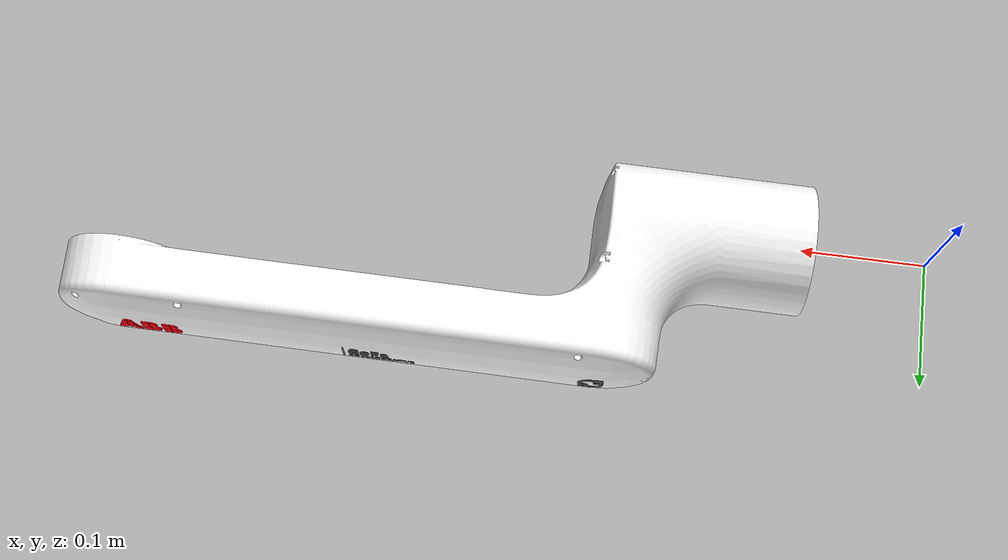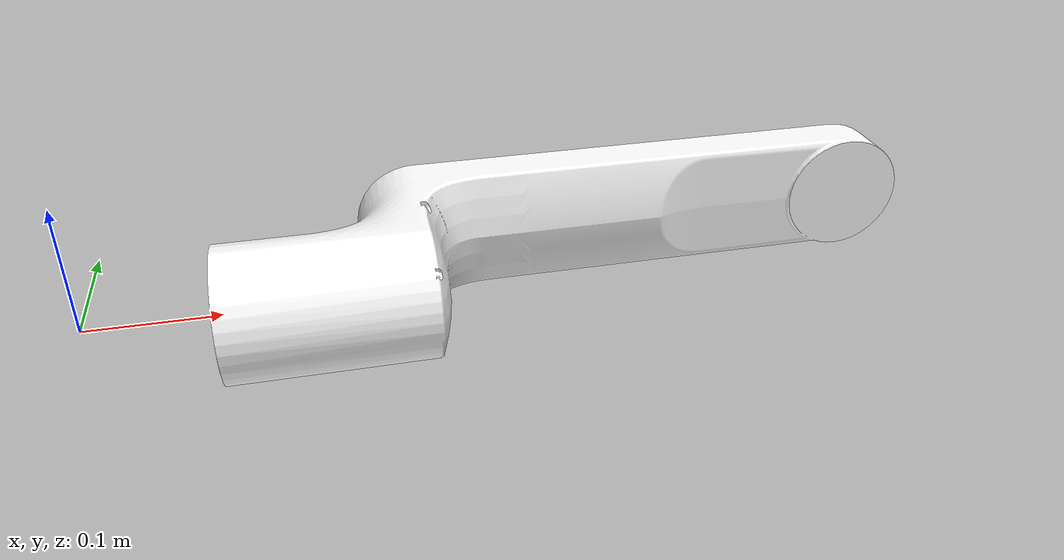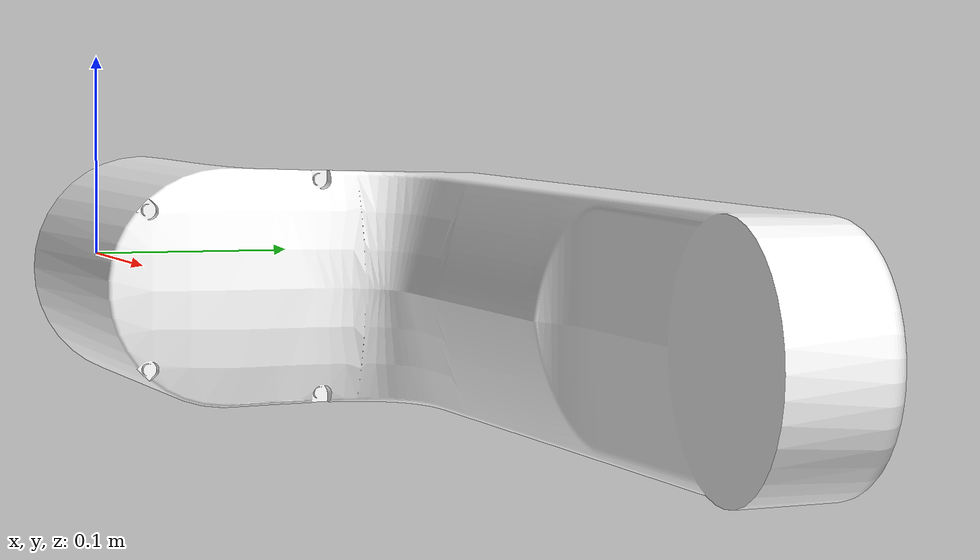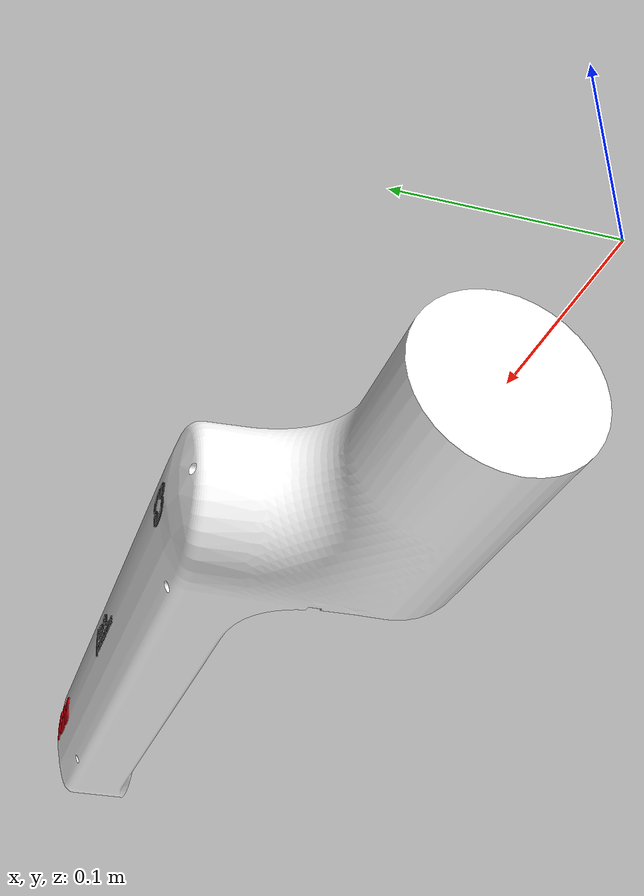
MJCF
<mujoco model="link_4">
  <default>
    <default class="visual">
      <geom group="2" type="mesh" contype="0" conaffinity="0"/>
    </default>
    <default class="collision">
      <geom group="3" type="mesh"/>
    </default>
  </default>
  <asset>
    <material name="material_link_4_0" specular="0.20000000000000004" shininess="1.0" rgba="0.09803922 0.09803922 0.09803922 1.0"/>
    <material name="material_link_4_1" specular="0.20000000000000004" shininess="1.0" rgba="1.00000000 0.00000000 0.05490196 1.0"/>
    <material name="material_link_4_2" specular="0.20000000000000004" shininess="1.0" rgba="1.00000000 1.00000000 1.00000000 1.0"/>
    <mesh file="link_4_0.obj"/>
    <mesh file="link_4_1.obj"/>
    <mesh file="link_4_2.obj"/>
  </asset>
  <worldbody>
    <body name="link_4">
      <geom mesh="link_4_0" material="material_link_4_2" class="visual"/>
      <geom mesh="link_4_1" material="material_link_4_1" class="visual"/>
      <geom mesh="link_4_2" material="material_link_4_0" class="visual"/>
      <geom mesh="link_4_0" class="collision"/>
      <geom mesh="link_4_1" class="collision"/>
      <geom mesh="link_4_2" class="collision"/>
    </body>
  </worldbody>
</mujoco>
